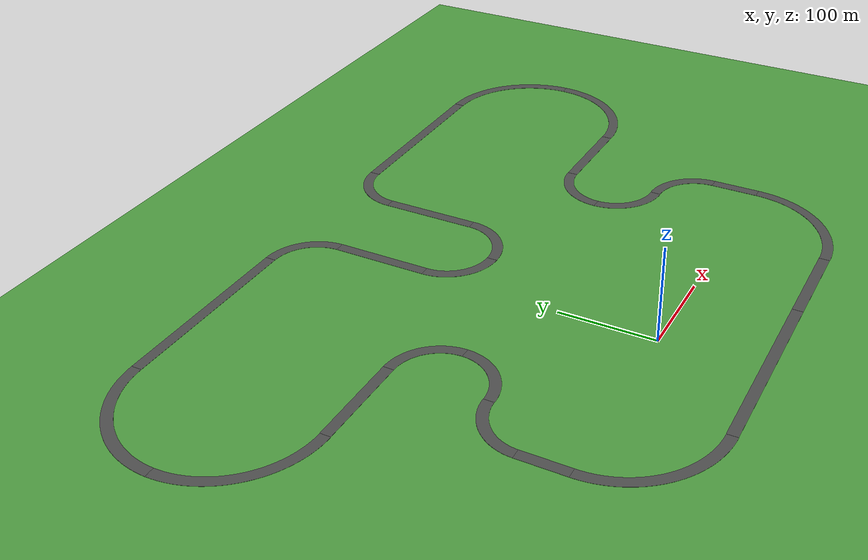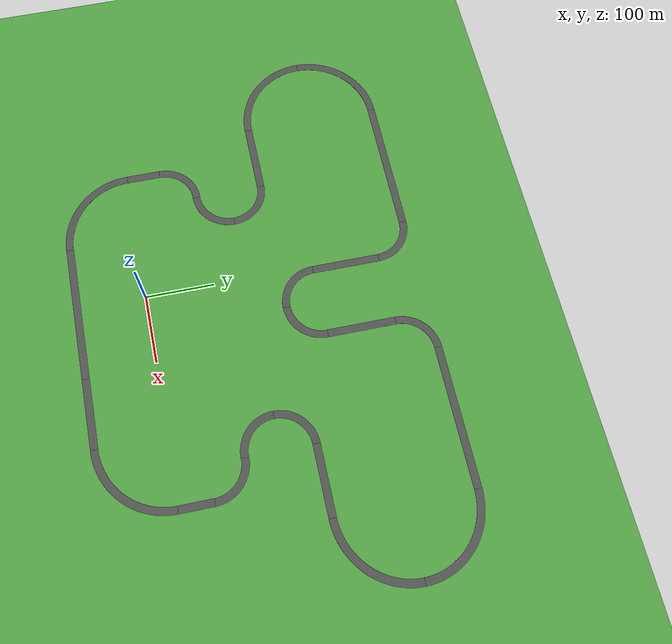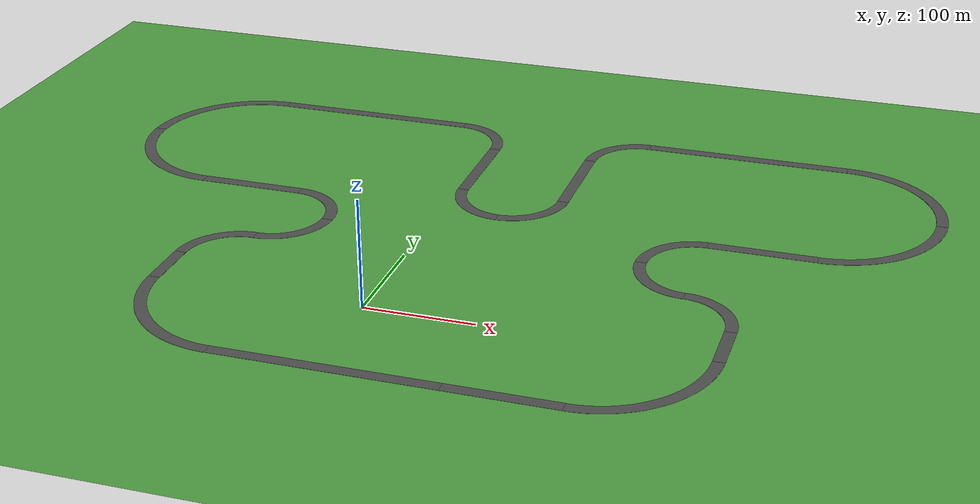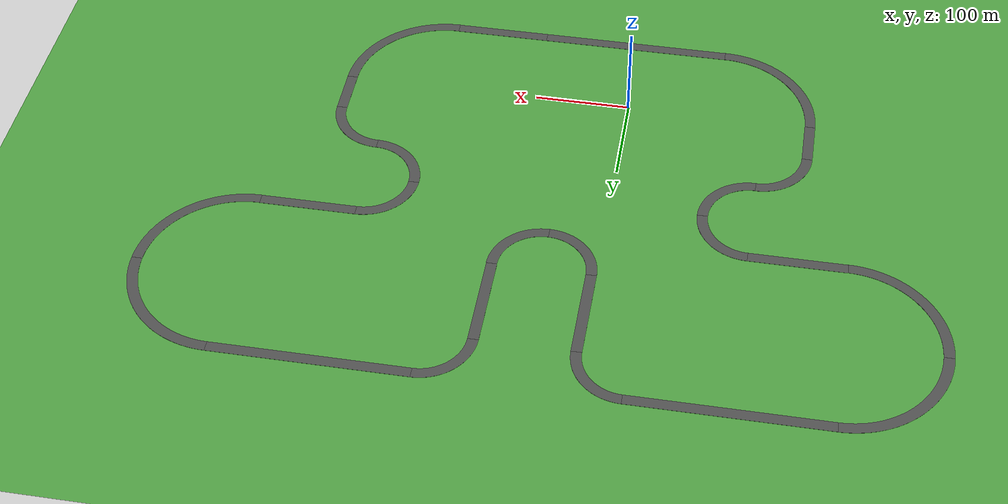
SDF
<sdf version="1.6">
 <world name="default">
  <light name="sun" type="directional">
   <pose>0 0 10 0 -0 0</pose>
   <diffuse>0.8 0.8 0.8 1</diffuse>
   <specular>0.2 0.2 0.2 1</specular>
   <attenuation>
    <range>1000</range>
    <constant>0.9</constant>
    <linear>0.01</linear>
    <quadratic>0.001</quadratic>
   </attenuation>
   <direction>-0.5 0.1 -0.9</direction>
  </light>
  <scene>
   <ambient>0.4 0.4 0.4 1</ambient>
   <background>0 0.9 1 1</background>
   <shadows>1</shadows>
   <grid>0</grid>
  </scene>
  <model name="ground_plane">
   <static>1</static>
   <link name="link">
    <collision name="collision">
     <geometry><plane><normal>0 0 1</normal><size>100 100</size></plane></geometry>
     <surface><friction><ode><mu>100</mu><mu2>50</mu2></ode></friction></surface>
    </collision>
    <visual name="visual">
     <cast_shadows>0</cast_shadows>
     <geometry><plane><normal>0 0 1</normal><size>10000 10000</size></plane></geometry>
     <material>
      <script><uri>file://media/materials/scripts/ds_sim.material</uri><name>DSSim/GrassBackground</name></script>
     </material>
    </visual>
   </link>
  </model>
  <gravity>0 0 -9.8</gravity>
  <magnetic_field>6e-06 2.3e-05 -4.2e-05</magnetic_field>
  <atmosphere type="adiabatic"/>
  <physics name="default_physics" default="0" type="ode">
   <max_step_size>0.001</max_step_size>
   <real_time_factor>1</real_time_factor>
   <real_time_update_rate>1000</real_time_update_rate>
  </physics>
  <scene>
   <ambient>0.4 0.4 0.4 1</ambient>
   <background>0.7 0.7 0.7 1</background>
   <shadows>1</shadows>
   <grid>0</grid>
  </scene>
  <spherical_coordinates>
   <surface_model>EARTH_WGS84</surface_model>
   <latitude_deg>0</latitude_deg>
   <longitude_deg>0</longitude_deg>
   <elevation>0</elevation>
   <heading_deg>0</heading_deg>
  </spherical_coordinates>
  <model name="(DS) Straight Road - 200m_8">
   <static>1</static>
   <link name="link">
    <inertial>
     <mass>1</mass>
     <inertia><ixx>1</ixx><iyy>1</iyy><izz>1</izz><ixy>0</ixy><ixz>0</ixz><iyz>0</iyz></inertia>
    </inertial>
    <collision name="collision">
     <geometry><mesh><uri>model://ds_straight_road_200m/meshes/straight_road_200m.dae</uri></mesh></geometry>
    </collision>
    <visual name="visual">
     <geometry><mesh><uri>model://ds_straight_road_200m/meshes/straight_road_200m.dae</uri></mesh></geometry>
     <material>
      <script><uri>file://media/materials/scripts/ds_sim.material</uri><name>DSSim/Road</name></script>
     </material>
    </visual>
   </link>
   <pose>4.98041 -90.7828 0 0 -0 0</pose>
  </model>
  <model name="(DS) Straight Road - 100m_0">
   <static>1</static>
   <link name="link">
    <inertial>
     <mass>1</mass>
     <inertia><ixx>1</ixx><iyy>1</iyy><izz>1</izz><ixy>0</ixy><ixz>0</ixz><iyz>0</iyz></inertia>
    </inertial>
    <collision name="collision">
     <geometry><mesh><uri>model://ds_straight_road_100m/meshes/straight_road_100m.dae</uri></mesh></geometry>
    </collision>
    <visual name="visual">
     <geometry><mesh><uri>model://ds_straight_road_100m/meshes/straight_road_100m.dae</uri></mesh></geometry>
     <material>
      <script><uri>file://media/materials/scripts/ds_sim.material</uri><name>DSSim/Road</name></script>
     </material>
    </visual>
   </link>
   <pose>154.969 -90.7906 0 0 -0 0</pose>
  </model>
  <model name="(DS) Curved Road - 100m_3">
   <static>1</static>
   <link name="link">
    <inertial>
     <mass>1</mass>
     <inertia><ixx>1</ixx><iyy>1</iyy><izz>1</izz><ixy>0</ixy><ixz>0</ixz><iyz>0</iyz></inertia>
    </inertial>
    <collision name="collision">
     <geometry><mesh><uri>model://ds_curved_road_100m/meshes/curved_road_100m.dae</uri></mesh></geometry>
    </collision>
    <visual name="visual">
     <geometry><mesh><uri>model://ds_curved_road_100m/meshes/curved_road_100m.dae</uri></mesh></geometry>
     <material>
      <script><uri>file://media/materials/scripts/ds_sim.material</uri><name>DSSim/Road</name></script>
     </material>
    </visual>
   </link>
   <pose>257.705 -53.7644 0 0 -0 0</pose>
  </model>
  <model name="(DS) Straight Road - 50m">
   <static>1</static>
   <link name="link">
    <inertial>
     <mass>1</mass>
     <inertia><ixx>1</ixx><iyy>1</iyy><izz>1</izz><ixy>0</ixy><ixz>0</ixz><iyz>0</iyz></inertia>
    </inertial>
    <collision name="collision">
     <geometry><mesh><uri>model://ds_straight_road_50m/meshes/straight_road_50m.dae</uri></mesh></geometry>
    </collision>
    <visual name="visual">
     <geometry><mesh><uri>model://ds_straight_road_50m/meshes/straight_road_50m.dae</uri></mesh></geometry>
     <material>
      <script><uri>file://media/materials/scripts/ds_sim.material</uri><name>DSSim/Road</name></script>
     </material>
    </visual>
   </link>
   <pose>314.936 23.9712 0 0 0 -1.5707</pose>
  </model>
  <model name="(DS) Curved Road - 100m_7">
   <static>1</static>
   <link name="link">
    <inertial>
     <mass>1</mass>
     <inertia><ixx>1</ixx><iyy>1</iyy><izz>1</izz><ixy>0</ixy><ixz>0</ixz><iyz>0</iyz></inertia>
    </inertial>
    <collision name="collision">
     <geometry><mesh><uri>model://ds_curved_road_100m/meshes/curved_road_100m.dae</uri></mesh></geometry>
    </collision>
    <visual name="visual">
     <geometry><mesh><uri>model://ds_curved_road_100m/meshes/curved_road_100m.dae</uri></mesh></geometry>
     <material>
      <script><uri>file://media/materials/scripts/ds_sim.material</uri><name>DSSim/Road</name></script>
     </material>
    </visual>
   </link>
   <pose>-147.731 -53.7561 0 0 0 -1.5707</pose>
  </model>
  <model name="(DS) Straight Road - 50m_2">
   <static>1</static>
   <link name="link">
    <inertial>
     <mass>1</mass>
     <inertia><ixx>1</ixx><iyy>1</iyy><izz>1</izz><ixy>0</ixy><ixz>0</ixz><iyz>0</iyz></inertia>
    </inertial>
    <collision name="collision">
     <geometry><mesh><uri>model://ds_straight_road_50m/meshes/straight_road_50m.dae</uri></mesh></geometry>
    </collision>
    <visual name="visual">
     <geometry><mesh><uri>model://ds_straight_road_50m/meshes/straight_road_50m.dae</uri></mesh></geometry>
     <material>
      <script><uri>file://media/materials/scripts/ds_sim.material</uri><name>DSSim/Road</name></script>
     </material>
    </visual>
   </link>
   <pose>-204.97 23.9511 0 0 -0 1.5707</pose>
  </model>
  <model name="(DS) Curved Road - 50m_1">
   <static>1</static>
   <link name="link">
    <inertial>
     <mass>1</mass>
     <inertia><ixx>1</ixx><iyy>1</iyy><izz>1</izz><ixy>0</ixy><ixz>0</ixz><iyz>0</iyz></inertia>
    </inertial>
    <collision name="collision">
     <geometry><mesh><uri>model://ds_curved_road_50m/meshes/curved_road_50m.dae</uri></mesh></geometry>
    </collision>
    <visual name="visual">
     <geometry><mesh><uri>model://ds_curved_road_50m/meshes/curved_road_50m.dae</uri></mesh></geometry>
     <material>
      <script><uri>file://media/materials/scripts/ds_sim.material</uri><name>DSSim/Road</name></script>
     </material>
    </visual>
   </link>
   <pose>-172.719 76.5402 0 0 -0 3.14159</pose>
  </model>
  <model name="(DS) Curved Road - 50m_2">
   <static>1</static>
   <link name="link">
    <inertial>
     <mass>1</mass>
     <inertia><ixx>1</ixx><iyy>1</iyy><izz>1</izz><ixy>0</ixy><ixz>0</ixz><iyz>0</iyz></inertia>
    </inertial>
    <collision name="collision">
     <geometry><mesh><uri>model://ds_curved_road_50m/meshes/curved_road_50m.dae</uri></mesh></geometry>
    </collision>
    <visual name="visual">
     <geometry><mesh><uri>model://ds_curved_road_50m/meshes/curved_road_50m.dae</uri></mesh></geometry>
     <material>
      <script><uri>file://media/materials/scripts/ds_sim.material</uri><name>DSSim/Road</name></script>
     </material>
    </visual>
   </link>
   <pose>-117.245 120.825 0 0 -0 0</pose>
  </model>
  <model name="(DS) Curved Road - 50m_3">
   <static>1</static>
   <link name="link">
    <inertial>
     <mass>1</mass>
     <inertia><ixx>1</ixx><iyy>1</iyy><izz>1</izz><ixy>0</ixy><ixz>0</ixz><iyz>0</iyz></inertia>
    </inertial>
    <collision name="collision">
     <geometry><mesh><uri>model://ds_curved_road_50m/meshes/curved_road_50m.dae</uri></mesh></geometry>
    </collision>
    <visual name="visual">
     <geometry><mesh><uri>model://ds_curved_road_50m/meshes/curved_road_50m.dae</uri></mesh></geometry>
     <material>
      <script><uri>file://media/materials/scripts/ds_sim.material</uri><name>DSSim/Road</name></script>
     </material>
    </visual>
   </link>
   <pose>-117.244 176.289 0 0 -0 1.5707</pose>
  </model>
  <model name="(DS) Straight Road - 100m_5">
   <static>1</static>
   <link name="link">
    <inertial>
     <mass>1</mass>
     <inertia><ixx>1</ixx><iyy>1</iyy><izz>1</izz><ixy>0</ixy><ixz>0</ixz><iyz>0</iyz></inertia>
    </inertial>
    <collision name="collision">
     <geometry><mesh><uri>model://ds_straight_road_100m/meshes/straight_road_100m.dae</uri></mesh></geometry>
    </collision>
    <visual name="visual">
     <geometry><mesh><uri>model://ds_straight_road_100m/meshes/straight_road_100m.dae</uri></mesh></geometry>
     <material>
      <script><uri>file://media/materials/scripts/ds_sim.material</uri><name>DSSim/Road</name></script>
     </material>
    </visual>
   </link>
   <pose>-194.968 208.536 0 0 -0 0</pose>
  </model>
  <model name="(DS) Curved Road - 50m_7">
   <static>1</static>
   <link name="link">
    <inertial>
     <mass>1</mass>
     <inertia><ixx>1</ixx><iyy>1</iyy><izz>1</izz><ixy>0</ixy><ixz>0</ixz><iyz>0</iyz></inertia>
    </inertial>
    <collision name="collision">
     <geometry><mesh><uri>model://ds_curved_road_50m/meshes/curved_road_50m.dae</uri></mesh></geometry>
    </collision>
    <visual name="visual">
     <geometry><mesh><uri>model://ds_curved_road_50m/meshes/curved_road_50m.dae</uri></mesh></geometry>
     <material>
      <script><uri>file://media/materials/scripts/ds_sim.material</uri><name>DSSim/Road</name></script>
     </material>
    </visual>
   </link>
   <pose>282.694 76.6819 0 0 -0 1.5707</pose>
  </model>
  <model name="(DS) Curved Road - 50m_8">
   <static>1</static>
   <link name="link">
    <inertial>
     <mass>1</mass>
     <inertia><ixx>1</ixx><iyy>1</iyy><izz>1</izz><ixy>0</ixy><ixz>0</ixz><iyz>0</iyz></inertia>
    </inertial>
    <collision name="collision">
     <geometry><mesh><uri>model://ds_curved_road_50m/meshes/curved_road_50m.dae</uri></mesh></geometry>
    </collision>
    <visual name="visual">
     <geometry><mesh><uri>model://ds_curved_road_50m/meshes/curved_road_50m.dae</uri></mesh></geometry>
     <material>
      <script><uri>file://media/materials/scripts/ds_sim.material</uri><name>DSSim/Road</name></script>
     </material>
    </visual>
   </link>
   <pose>227.233 176.317 0 0 -0 3.14159</pose>
  </model>
  <model name="(DS) Curved Road - 50m_9">
   <static>1</static>
   <link name="link">
    <inertial>
     <mass>1</mass>
     <inertia><ixx>1</ixx><iyy>1</iyy><izz>1</izz><ixy>0</ixy><ixz>0</ixz><iyz>0</iyz></inertia>
    </inertial>
    <collision name="collision">
     <geometry><mesh><uri>model://ds_curved_road_50m/meshes/curved_road_50m.dae</uri></mesh></geometry>
    </collision>
    <visual name="visual">
     <geometry><mesh><uri>model://ds_curved_road_50m/meshes/curved_road_50m.dae</uri></mesh></geometry>
     <material>
      <script><uri>file://media/materials/scripts/ds_sim.material</uri><name>DSSim/Road</name></script>
     </material>
    </visual>
   </link>
   <pose>227.236 120.969 0 0 0 -1.5707</pose>
  </model>
  <model name="(DS) Straight Road - 100m_6">
   <static>1</static>
   <link name="link">
    <inertial>
     <mass>1</mass>
     <inertia><ixx>1</ixx><iyy>1</iyy><izz>1</izz><ixy>0</ixy><ixz>0</ixz><iyz>0</iyz></inertia>
    </inertial>
    <collision name="collision">
     <geometry><mesh><uri>model://ds_straight_road_100m/meshes/straight_road_100m.dae</uri></mesh></geometry>
    </collision>
    <visual name="visual">
     <geometry><mesh><uri>model://ds_straight_road_100m/meshes/straight_road_100m.dae</uri></mesh></geometry>
     <material>
      <script><uri>file://media/materials/scripts/ds_sim.material</uri><name>DSSim/Road</name></script>
     </material>
    </visual>
   </link>
   <pose>304.773 208.555 0 0 -0 0</pose>
  </model>
  <model name="(DS) Curved Road - 100m_8">
   <static>1</static>
   <link name="link">
    <inertial>
     <mass>1</mass>
     <inertia><ixx>1</ixx><iyy>1</iyy><izz>1</izz><ixy>0</ixy><ixz>0</ixz><iyz>0</iyz></inertia>
    </inertial>
    <collision name="collision">
     <geometry><mesh><uri>model://ds_curved_road_100m/meshes/curved_road_100m.dae</uri></mesh></geometry>
    </collision>
    <visual name="visual">
     <geometry><mesh><uri>model://ds_curved_road_100m/meshes/curved_road_100m.dae</uri></mesh></geometry>
     <material>
      <script><uri>file://media/materials/scripts/ds_sim.material</uri><name>DSSim/Road</name></script>
     </material>
    </visual>
   </link>
   <pose>407.453 245.59 0 0 -0 0</pose>
  </model>
  <model name="(DS) Curved Road - 100m_9">
   <static>1</static>
   <link name="link">
    <inertial>
     <mass>1</mass>
     <inertia><ixx>1</ixx><iyy>1</iyy><izz>1</izz><ixy>0</ixy><ixz>0</ixz><iyz>0</iyz></inertia>
    </inertial>
    <collision name="collision">
     <geometry><mesh><uri>model://ds_curved_road_100m/meshes/curved_road_100m.dae</uri></mesh></geometry>
    </collision>
    <visual name="visual">
     <geometry><mesh><uri>model://ds_curved_road_100m/meshes/curved_road_100m.dae</uri></mesh></geometry>
     <material>
      <script><uri>file://media/materials/scripts/ds_sim.material</uri><name>DSSim/Road</name></script>
     </material>
    </visual>
   </link>
   <pose>-297.696 245.57 0 0 0 -1.5707</pose>
  </model>
  <model name="(DS) Curved Road - 100m_10">
   <static>1</static>
   <link name="link">
    <inertial>
     <mass>1</mass>
     <inertia><ixx>1</ixx><iyy>1</iyy><izz>1</izz><ixy>0</ixy><ixz>0</ixz><iyz>0</iyz></inertia>
    </inertial>
    <collision name="collision">
     <geometry><mesh><uri>model://ds_curved_road_100m/meshes/curved_road_100m.dae</uri></mesh></geometry>
    </collision>
    <visual name="visual">
     <geometry><mesh><uri>model://ds_curved_road_100m/meshes/curved_road_100m.dae</uri></mesh></geometry>
     <material>
      <script><uri>file://media/materials/scripts/ds_sim.material</uri><name>DSSim/Road</name></script>
     </material>
    </visual>
   </link>
   <pose>-297.693 350.522 0 0 -0 3.14159</pose>
  </model>
  <model name="(DS) Curved Road - 100m_11">
   <static>1</static>
   <link name="link">
    <inertial>
     <mass>1</mass>
     <inertia><ixx>1</ixx><iyy>1</iyy><izz>1</izz><ixy>0</ixy><ixz>0</ixz><iyz>0</iyz></inertia>
    </inertial>
    <collision name="collision">
     <geometry><mesh><uri>model://ds_curved_road_100m/meshes/curved_road_100m.dae</uri></mesh></geometry>
    </collision>
    <visual name="visual">
     <geometry><mesh><uri>model://ds_curved_road_100m/meshes/curved_road_100m.dae</uri></mesh></geometry>
     <material>
      <script><uri>file://media/materials/scripts/ds_sim.material</uri><name>DSSim/Road</name></script>
     </material>
    </visual>
   </link>
   <pose>407.459 351.038 0 0 -0 1.5707</pose>
  </model>
  <model name="(DS) Straight Road - 200m_9">
   <static>1</static>
   <link name="link">
    <inertial>
     <mass>1</mass>
     <inertia><ixx>1</ixx><iyy>1</iyy><izz>1</izz><ixy>0</ixy><ixz>0</ixz><iyz>0</iyz></inertia>
    </inertial>
    <collision name="collision">
     <geometry><mesh><uri>model://ds_straight_road_200m/meshes/straight_road_200m.dae</uri></mesh></geometry>
    </collision>
    <visual name="visual">
     <geometry><mesh><uri>model://ds_straight_road_200m/meshes/straight_road_200m.dae</uri></mesh></geometry>
     <material>
      <script><uri>file://media/materials/scripts/ds_sim.material</uri><name>DSSim/Road</name></script>
     </material>
    </visual>
   </link>
   <pose>-144.993 407.764 0 0 -0 0</pose>
  </model>
  <model name="(DS) Straight Road - 200m_11">
   <static>1</static>
   <link name="link">
    <inertial>
     <mass>1</mass>
     <inertia><ixx>1</ixx><iyy>1</iyy><izz>1</izz><ixy>0</ixy><ixz>0</ixz><iyz>0</iyz></inertia>
    </inertial>
    <collision name="collision">
     <geometry><mesh><uri>model://ds_straight_road_200m/meshes/straight_road_200m.dae</uri></mesh></geometry>
    </collision>
    <visual name="visual">
     <geometry><mesh><uri>model://ds_straight_road_200m/meshes/straight_road_200m.dae</uri></mesh></geometry>
     <material>
      <script><uri>file://media/materials/scripts/ds_sim.material</uri><name>DSSim/Road</name></script>
     </material>
    </visual>
   </link>
   <pose>254.821 408.288 0 0 -0 0</pose>
  </model>
  <model name="(DS) Curved Road - 50m_10">
   <static>1</static>
   <link name="link">
    <inertial>
     <mass>1</mass>
     <inertia><ixx>1</ixx><iyy>1</iyy><izz>1</izz><ixy>0</ixy><ixz>0</ixz><iyz>0</iyz></inertia>
    </inertial>
    <collision name="collision">
     <geometry><mesh><uri>model://ds_curved_road_50m/meshes/curved_road_50m.dae</uri></mesh></geometry>
    </collision>
    <visual name="visual">
     <geometry><mesh><uri>model://ds_curved_road_50m/meshes/curved_road_50m.dae</uri></mesh></geometry>
     <material>
      <script><uri>file://media/materials/scripts/ds_sim.material</uri><name>DSSim/Road</name></script>
     </material>
    </visual>
   </link>
   <pose>82.8035 220.58 0 0 -0 0</pose>
  </model>
  <model name="(DS) Curved Road - 50m_11">
   <static>1</static>
   <link name="link">
    <inertial>
     <mass>1</mass>
     <inertia><ixx>1</ixx><iyy>1</iyy><izz>1</izz><ixy>0</ixy><ixz>0</ixz><iyz>0</iyz></inertia>
    </inertial>
    <collision name="collision">
     <geometry><mesh><uri>model://ds_curved_road_50m/meshes/curved_road_50m.dae</uri></mesh></geometry>
    </collision>
    <visual name="visual">
     <geometry><mesh><uri>model://ds_curved_road_50m/meshes/curved_road_50m.dae</uri></mesh></geometry>
     <material>
      <script><uri>file://media/materials/scripts/ds_sim.material</uri><name>DSSim/Road</name></script>
     </material>
    </visual>
   </link>
   <pose>127.086 376.051 0 0 -0 3.14159</pose>
  </model>
  <model name="(DS) Curved Road - 50m_12">
   <static>1</static>
   <link name="link">
    <inertial>
     <mass>1</mass>
     <inertia><ixx>1</ixx><iyy>1</iyy><izz>1</izz><ixy>0</ixy><ixz>0</ixz><iyz>0</iyz></inertia>
    </inertial>
    <collision name="collision">
     <geometry><mesh><uri>model://ds_curved_road_50m/meshes/curved_road_50m.dae</uri></mesh></geometry>
    </collision>
    <visual name="visual">
     <geometry><mesh><uri>model://ds_curved_road_50m/meshes/curved_road_50m.dae</uri></mesh></geometry>
     <material>
      <script><uri>file://media/materials/scripts/ds_sim.material</uri><name>DSSim/Road</name></script>
     </material>
    </visual>
   </link>
   <pose>27.3315 220.574 0 0 0 -1.5707</pose>
  </model>
  <model name="(DS) Curved Road - 50m_13">
   <static>1</static>
   <link name="link">
    <inertial>
     <mass>1</mass>
     <inertia><ixx>1</ixx><iyy>1</iyy><izz>1</izz><ixy>0</ixy><ixz>0</ixz><iyz>0</iyz></inertia>
    </inertial>
    <collision name="collision">
     <geometry><mesh><uri>model://ds_curved_road_50m/meshes/curved_road_50m.dae</uri></mesh></geometry>
    </collision>
    <visual name="visual">
     <geometry><mesh><uri>model://ds_curved_road_50m/meshes/curved_road_50m.dae</uri></mesh></geometry>
     <material>
      <script><uri>file://media/materials/scripts/ds_sim.material</uri><name>DSSim/Road</name></script>
     </material>
    </visual>
   </link>
   <pose>-17.2474 375.532 0 0 -0 1.5707</pose>
  </model>
  <model name="(DS) Straight Road - 100m_7">
   <static>1</static>
   <link name="link">
    <inertial>
     <mass>1</mass>
     <inertia><ixx>1</ixx><iyy>1</iyy><izz>1</izz><ixy>0</ixy><ixz>0</ixz><iyz>0</iyz></inertia>
    </inertial>
    <collision name="collision">
     <geometry><mesh><uri>model://ds_straight_road_100m/meshes/straight_road_100m.dae</uri></mesh></geometry>
    </collision>
    <visual name="visual">
     <geometry><mesh><uri>model://ds_straight_road_100m/meshes/straight_road_100m.dae</uri></mesh></geometry>
     <material>
      <script><uri>file://media/materials/scripts/ds_sim.material</uri><name>DSSim/Road</name></script>
     </material>
    </visual>
   </link>
   <pose>15.0897 297.99 0 0 0 -1.5707</pose>
  </model>
  <model name="(DS) Straight Road - 100m_8">
   <static>1</static>
   <link name="link">
    <inertial>
     <mass>1</mass>
     <inertia><ixx>1</ixx><iyy>1</iyy><izz>1</izz><ixy>0</ixy><ixz>0</ixz><iyz>0</iyz></inertia>
    </inertial>
    <collision name="collision">
     <geometry><mesh><uri>model://ds_straight_road_100m/meshes/straight_road_100m.dae</uri></mesh></geometry>
    </collision>
    <visual name="visual">
     <geometry><mesh><uri>model://ds_straight_road_100m/meshes/straight_road_100m.dae</uri></mesh></geometry>
     <material>
      <script><uri>file://media/materials/scripts/ds_sim.material</uri><name>DSSim/Road</name></script>
     </material>
    </visual>
   </link>
   <pose>94.847 298.317 0 0 -0 1.5707</pose>
  </model>
 </world>
</sdf>
